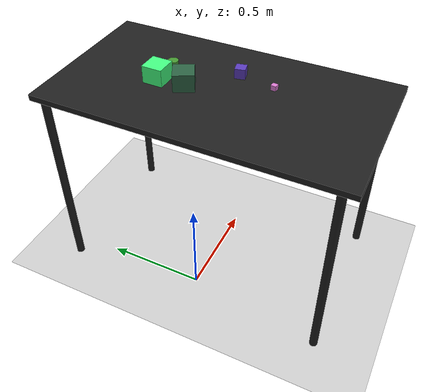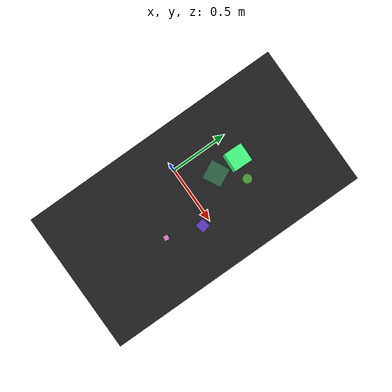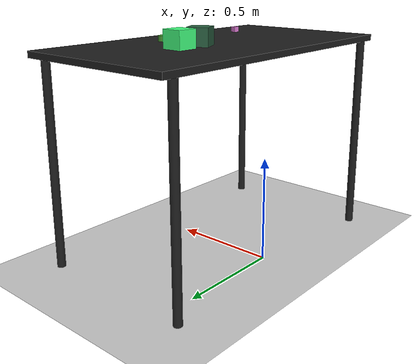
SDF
<?xml version="1.0" ?>
<sdf version="1.6">
  <world name="arm_world">
    <plugin filename="gz-sim-physics-system" name="gz::sim::systems::Physics">
      <engine>
        <filename>libgz-physics-bullet-featherstone-plugin.so</filename>
      </engine>
    </plugin>
    <plugin filename="gz-sim-user-commands-system" name="gz::sim::systems::UserCommands"/>
    <plugin filename="gz-sim-scene-broadcaster-system" name="gz::sim::systems::SceneBroadcaster"/>
    <plugin filename="gz-sim-sensors-system" name="gz::sim::systems::Sensors">
      <render_engine>ogre2</render_engine>
    </plugin>
    <gravity>0.0 0.0 -9.8</gravity>
    <scene>
      <shadows>false</shadows>
    </scene>
    <gui>
      <camera name="user_camera">
        <pose>0.75 -0.75 1.4 0 0.29 2.21</pose>
      </camera>
    </gui>
    <include>
      <uri>https://fuel.gazebosim.org/1.0/OpenRobotics/models/Sun</uri>
    </include>
    <model name="table">
      <static>true</static>
      <include>
        <uri>model://table</uri>
      </include>
      <pose>0.29 0 0 0 0 1.5708</pose>
    </model>
    <model name="ground_plane">
      <static>true</static>
      <link name="link">
        <collision name="collision">
          <geometry>
            <plane>
              <normal>0 0 1</normal>
            </plane>
          </geometry>
          <surface>
            <friction>
              <ode>
                <mu>1.0</mu>
                <mu2>1.0</mu2>
              </ode>
            </friction>
          </surface>
        </collision>
        <visual name="visual">
          <geometry>
            <plane>
              <normal>0 0 1</normal>
              <size>100 100</size>
            </plane>
          </geometry>
          <material>
            <ambient>0.8 0.8 0.8 1</ambient>
            <diffuse>0.8 0.8 0.8 1</diffuse>
            <specular>0.8 0.8 0.8 1</specular>
          </material>
        </visual>
      </link>
    </model>
    <model name="cube_l_0">
      <pose>0.25 0.161 1.05 0 0 0.46</pose>
      <link name="cube_l_0_link">
        <inertial>
          <mass>0.05</mass>
          <inertia>
            <ixx>2.04e-7</ixx>
            <iyy>2.04e-7</iyy>
            <izz>3.9e-8</izz>
            <ixy>0</ixy>
            <ixz>0</ixz>
            <iyz>0</iyz>
          </inertia>
        </inertial>
        <collision name="cube_l_0_collision">
          <geometry>
            <box>
              <size>0.1 0.1 0.1</size>
            </box>
          </geometry>
          <surface>
            <friction>
              <ode>
                <mu>0.8</mu>
                <mu2>0.8</mu2>
                <fdir1>0 0 1</fdir1>
                <slip1>0.001</slip1>
                <slip2>0.001</slip2>
              </ode>
              <torsional>
                <coefficient>0.1</coefficient>
                <surface_radius>0.015</surface_radius>
                <use_patch_radius>true</use_patch_radius>
              </torsional>
            </friction>
            <contact>
              <ode>
                <kp>1e5</kp>
                <kd>10</kd>
                <max_vel>0.1</max_vel>
                <min_depth>0.001</min_depth>
                <soft_cfm>0.01</soft_cfm>
                <soft_erp>0.2</soft_erp>
              </ode>
            </contact>
            <bounce>
              <restitution_coefficient>0.2</restitution_coefficient>
              <threshold>0.01</threshold>
            </bounce>
          </surface>
        </collision>
        <visual name="cube_l_0_visual">
          <geometry>
            <box>
              <size>0.1 0.1 0.1</size>
            </box>
          </geometry>
          <material>
            <ambient>0.17 0.38 0.26 1</ambient>
            <diffuse>0.17 0.38 0.26 1</diffuse>
          </material>
        </visual>
        <velocity_decay>
          <linear>1</linear>
          <angular>1</angular>
        </velocity_decay>
      </link>
    </model>
    <model name="cylinder_m_1">
      <pose>0.361 0.277 1.05 0 0 1.19</pose>
      <link name="cylinder_m_1_link">
        <inertial>
          <mass>0.05</mass>
          <inertia>
            <ixx>2.04e-7</ixx>
            <iyy>2.04e-7</iyy>
            <izz>3.9e-8</izz>
            <ixy>0</ixy>
            <ixz>0</ixz>
            <iyz>0</iyz>
          </inertia>
        </inertial>
        <collision name="cylinder_m_1_collision">
          <geometry>
            <cylinder>
              <radius>0.025</radius>
              <length>0.025</length>
            </cylinder>
          </geometry>
          <surface>
            <friction>
              <ode>
                <mu>0.8</mu>
                <mu2>0.8</mu2>
                <fdir1>0 0 1</fdir1>
                <slip1>0.001</slip1>
                <slip2>0.001</slip2>
              </ode>
              <torsional>
                <coefficient>0.1</coefficient>
                <surface_radius>0.015</surface_radius>
                <use_patch_radius>true</use_patch_radius>
              </torsional>
            </friction>
            <contact>
              <ode>
                <kp>1e5</kp>
                <kd>10</kd>
                <max_vel>0.1</max_vel>
                <min_depth>0.001</min_depth>
                <soft_cfm>0.01</soft_cfm>
                <soft_erp>0.2</soft_erp>
              </ode>
            </contact>
            <bounce>
              <restitution_coefficient>0.2</restitution_coefficient>
              <threshold>0.01</threshold>
            </bounce>
          </surface>
        </collision>
        <visual name="cylinder_m_1_visual">
          <geometry>
            <cylinder>
              <radius>0.025</radius>
              <length>0.025</length>
            </cylinder>
          </geometry>
          <material>
            <ambient>0.27 0.59 0.19 1</ambient>
            <diffuse>0.27 0.59 0.19 1</diffuse>
          </material>
        </visual>
        <velocity_decay>
          <linear>1</linear>
          <angular>1</angular>
        </velocity_decay>
      </link>
    </model>
    <model name="cube_l_2">
      <pose>0.247 0.295 1.05 0 0 4.69</pose>
      <link name="cube_l_2_link">
        <inertial>
          <mass>0.05</mass>
          <inertia>
            <ixx>2.04e-7</ixx>
            <iyy>2.04e-7</iyy>
            <izz>3.9e-8</izz>
            <ixy>0</ixy>
            <ixz>0</ixz>
            <iyz>0</iyz>
          </inertia>
        </inertial>
        <collision name="cube_l_2_collision">
          <geometry>
            <box>
              <size>0.1 0.1 0.1</size>
            </box>
          </geometry>
          <surface>
            <friction>
              <ode>
                <mu>0.8</mu>
                <mu2>0.8</mu2>
                <fdir1>0 0 1</fdir1>
                <slip1>0.001</slip1>
                <slip2>0.001</slip2>
              </ode>
              <torsional>
                <coefficient>0.1</coefficient>
                <surface_radius>0.015</surface_radius>
                <use_patch_radius>true</use_patch_radius>
              </torsional>
            </friction>
            <contact>
              <ode>
                <kp>1e5</kp>
                <kd>10</kd>
                <max_vel>0.1</max_vel>
                <min_depth>0.001</min_depth>
                <soft_cfm>0.01</soft_cfm>
                <soft_erp>0.2</soft_erp>
              </ode>
            </contact>
            <bounce>
              <restitution_coefficient>0.2</restitution_coefficient>
              <threshold>0.01</threshold>
            </bounce>
          </surface>
        </collision>
        <visual name="cube_l_2_visual">
          <geometry>
            <box>
              <size>0.1 0.1 0.1</size>
            </box>
          </geometry>
          <material>
            <ambient>0.26 1.0 0.5 1</ambient>
            <diffuse>0.26 1.0 0.5 1</diffuse>
          </material>
        </visual>
        <velocity_decay>
          <linear>1</linear>
          <angular>1</angular>
        </velocity_decay>
      </link>
    </model>
    <model name="cube_s_3">
      <pose>0.368 -0.227 1.05 0 0 1.39</pose>
      <link name="cube_s_3_link">
        <inertial>
          <mass>0.05</mass>
          <inertia>
            <ixx>2.04e-7</ixx>
            <iyy>2.04e-7</iyy>
            <izz>3.9e-8</izz>
            <ixy>0</ixy>
            <ixz>0</ixz>
            <iyz>0</iyz>
          </inertia>
        </inertial>
        <collision name="cube_s_3_collision">
          <geometry>
            <box>
              <size>0.025 0.025 0.025</size>
            </box>
          </geometry>
          <surface>
            <friction>
              <ode>
                <mu>0.8</mu>
                <mu2>0.8</mu2>
                <fdir1>0 0 1</fdir1>
                <slip1>0.001</slip1>
                <slip2>0.001</slip2>
              </ode>
              <torsional>
                <coefficient>0.1</coefficient>
                <surface_radius>0.015</surface_radius>
                <use_patch_radius>true</use_patch_radius>
              </torsional>
            </friction>
            <contact>
              <ode>
                <kp>1e5</kp>
                <kd>10</kd>
                <max_vel>0.1</max_vel>
                <min_depth>0.001</min_depth>
                <soft_cfm>0.01</soft_cfm>
                <soft_erp>0.2</soft_erp>
              </ode>
            </contact>
            <bounce>
              <restitution_coefficient>0.2</restitution_coefficient>
              <threshold>0.01</threshold>
            </bounce>
          </surface>
        </collision>
        <visual name="cube_s_3_visual">
          <geometry>
            <box>
              <size>0.025 0.025 0.025</size>
            </box>
          </geometry>
          <material>
            <ambient>0.85 0.47 0.81 1</ambient>
            <diffuse>0.85 0.47 0.81 1</diffuse>
          </material>
        </visual>
        <velocity_decay>
          <linear>1</linear>
          <angular>1</angular>
        </velocity_decay>
      </link>
    </model>
    <model name="cube_m_4">
      <pose>0.423 -0.041 1.05 0 0 0.2</pose>
      <link name="cube_m_4_link">
        <inertial>
          <mass>0.05</mass>
          <inertia>
            <ixx>2.04e-7</ixx>
            <iyy>2.04e-7</iyy>
            <izz>3.9e-8</izz>
            <ixy>0</ixy>
            <ixz>0</ixz>
            <iyz>0</iyz>
          </inertia>
        </inertial>
        <collision name="cube_m_4_collision">
          <geometry>
            <box>
              <size>0.05 0.05 0.05</size>
            </box>
          </geometry>
          <surface>
            <friction>
              <ode>
                <mu>0.8</mu>
                <mu2>0.8</mu2>
                <fdir1>0 0 1</fdir1>
                <slip1>0.001</slip1>
                <slip2>0.001</slip2>
              </ode>
              <torsional>
                <coefficient>0.1</coefficient>
                <surface_radius>0.015</surface_radius>
                <use_patch_radius>true</use_patch_radius>
              </torsional>
            </friction>
            <contact>
              <ode>
                <kp>1e5</kp>
                <kd>10</kd>
                <max_vel>0.1</max_vel>
                <min_depth>0.001</min_depth>
                <soft_cfm>0.01</soft_cfm>
                <soft_erp>0.2</soft_erp>
              </ode>
            </contact>
            <bounce>
              <restitution_coefficient>0.2</restitution_coefficient>
              <threshold>0.01</threshold>
            </bounce>
          </surface>
        </collision>
        <visual name="cube_m_4_visual">
          <geometry>
            <box>
              <size>0.05 0.05 0.05</size>
            </box>
          </geometry>
          <material>
            <ambient>0.35 0.23 0.73 1</ambient>
            <diffuse>0.35 0.23 0.73 1</diffuse>
          </material>
        </visual>
        <velocity_decay>
          <linear>1</linear>
          <angular>1</angular>
        </velocity_decay>
      </link>
    </model>
  </world>
</sdf>

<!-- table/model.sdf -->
<sdf version="1.5">
  <model name="table">
    <static>true</static>
    <link name="link">
      <collision name="surface">
        <pose>0 0 1.0 0 0 0</pose>
        <geometry>
          <box>
            <size>1.5 0.8 0.03</size>
          </box>
        </geometry>
        <surface>
          <friction>
            <ode>
              <mu>0.6</mu>
              <mu2>0.6</mu2>
            </ode>
          </friction>
        </surface>
      </collision>
      <visual name="surface">
        <pose>0 0 1.0 0 0 0</pose>
        <geometry>
          <box>
            <size>1.5 0.8 0.03</size>
          </box>
        </geometry>
        <material>
          <script>
            <uri>file://media/materials/scripts/gazebo.material</uri>
            <name>Gazebo/Black</name>
          </script>
        </material>
      </visual>
      <collision name="front_left_leg">
        <pose>0.68 0.38 0.5 0 0 0</pose>
        <geometry>
          <cylinder>
            <radius>0.02</radius>
            <length>1.0</length>
          </cylinder>
        </geometry>
      </collision>
      <visual name="front_left_leg">
        <pose>0.68 0.38 0.5 0 0 0</pose>
        <geometry>
          <cylinder>
            <radius>0.02</radius>
            <length>1.0</length>
          </cylinder>
        </geometry>
        <material>
          <script>
            <uri>file://media/materials/scripts/gazebo.material</uri>
            <name>Gazebo/Black</name>
          </script>
        </material>
      </visual>
      <collision name="front_right_leg">
        <pose>0.68 -0.38 0.5 0 0 0</pose>
        <geometry>
          <cylinder>
            <radius>0.02</radius>
            <length>1.0</length>
          </cylinder>
        </geometry>
      </collision>
      <visual name="front_right_leg">
        <pose>0.68 -0.38 0.5 0 0 0</pose>
        <geometry>
          <cylinder>
            <radius>0.02</radius>
            <length>1.0</length>
          </cylinder>
        </geometry>
        <material>
          <script>
            <uri>file://media/materials/scripts/gazebo.material</uri>
            <name>Gazebo/Black</name>
          </script>
        </material>
      </visual>
      <collision name="back_right_leg">
        <pose>-0.68 -0.38 0.5 0 0 0</pose>
        <geometry>
          <cylinder>
            <radius>0.02</radius>
            <length>1.0</length>
          </cylinder>
        </geometry>
      </collision>
      <visual name="back_right_leg">
        <pose>-0.68 -0.38 0.5 0 0 0</pose>
        <geometry>
          <cylinder>
            <radius>0.02</radius>
            <length>1.0</length>
          </cylinder>
        </geometry>
        <material>
          <script>
            <uri>file://media/materials/scripts/gazebo.material</uri>
            <name>Gazebo/Black</name>
          </script>
        </material>
      </visual>
      <collision name="back_left_leg">
        <pose>-0.68 0.38 0.5 0 0 0</pose>
        <geometry>
          <cylinder>
            <radius>0.02</radius>
            <length>1.0</length>
          </cylinder>
        </geometry>
      </collision>
      <visual name="back_left_leg">
        <pose>-0.68 0.38 0.5 0 0 0</pose>
        <geometry>
          <cylinder>
            <radius>0.02</radius>
            <length>1.0</length>
          </cylinder>
        </geometry>
        <material>
          <script>
            <uri>file://media/materials/scripts/gazebo.material</uri>
            <name>Gazebo/Black</name>
          </script>
        </material>
      </visual>
    </link>
  </model>
</sdf>
